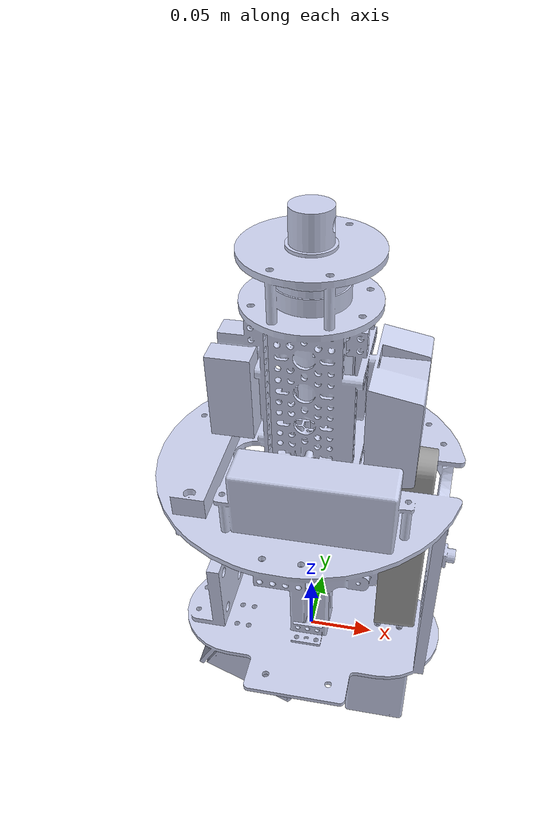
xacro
<?xml version="1.0"?>

<robot xmlns:xacro="http://www.ros.org/wiki/xacro" name="ilumo">
    <link name="base_link">
        <inertial>
            <origin xyz="0.0081135 -0.0088276 0.16905" rpy="0 0 0" />
            <mass value="1.075" />
            <inertia
                ixx="0.0014664" ixy="4.1828E-06" ixz="-1.0861E-05"
                iyy="0.0015072" iyz="-2.3652E-05"
                izz="0.0015929" />
        </inertial>
        <visual>
            <origin xyz="0 0 0" rpy="0 0 0" />
            <geometry>
                <mesh filename="package://ilumo_description/meshes/base_link.STL" />
            </geometry>
            <material name="">
                <color rgba="0.79216 0.81961 0.92941 1" />
            </material>
        </visual>
        <collision>
            <origin xyz="0 0 0" rpy="0 0 0" />
            <geometry>
                <mesh filename="package://ilumo_description/meshes/base_link.STL" />
            </geometry>
        </collision>
    </link>
    <link name="rot_link">
        <inertial>
            <origin xyz="-1.2768E-09 2.6825E-10 -0.023497" rpy="0 0 0" />
            <mass value="0.041606" />
            <inertia
                ixx="1.3344E-05" ixy="-2.4579E-12" ixz="1.2573E-12"
                iyy="1.327E-05" iyz="-3.6513E-13"
                izz="5.5627E-06" />
        </inertial>
        <visual>
            <origin xyz="0 0 0" rpy="0 0 0" />
            <geometry>
                <mesh filename="package://ilumo_description/meshes/rot_link.STL" />
            </geometry>
            <material name="">
                <color rgba="0.79216 0.81961 0.93333 1" />
            </material>
        </visual>
        <collision>
        <origin xyz="0 0 0" rpy="0 0 0" />
        <geometry>
            <mesh filename="package://ilumo_description/meshes/rot_link.STL" />
        </geometry>
        </collision>
    </link>
    <joint name="rot_joint" type="revolute">
        <origin xyz="0 0 0.344" rpy="0 0 0" />
        <parent link="base_link" />
        <child link="rot_link" />
        <axis xyz="0 0 1" />
        <limit lower="0" upper="0" effort="2.5987" velocity="31.416" />
    </joint>
    <link name="lidar_side_link">
        <inertial>
            <origin xyz="-0.010032 -0.0076905 -0.0051375" rpy="0 0 0" />
            <mass value="0.049225" />
            <inertia
                ixx="3.0504E-05" ixy="2.1873E-06" ixz="-1.0675E-06"
                iyy="5.9636E-05" iyz="-2.241E-06"
                izz="5.2563E-05" />
        </inertial>
        <visual>
            <origin xyz="0 0 0" rpy="0 0 0" />
            <geometry>
                <mesh filename="package://ilumo_description/meshes/lidar_side_link.STL" />
            </geometry>
            <material name="">
                <color rgba="0.79216 0.81961 0.93333 1" />
            </material>
        </visual>
        <collision>
            <origin xyz="0 0 0" rpy="0 0 0" />
            <geometry>
                <mesh filename="package://ilumo_description/meshes/lidar_side_link.STL" />
            </geometry>
        </collision>
    </link>
    <joint name="lidar_side_joint" type="fixed">
        <origin xyz="0.0655 -0.00067464 -0.0472" rpy="1.5708 1.5708 0" />
        <parent link="base_link" />
        <child link="lidar_side_link" />
        <axis xyz="0 0 0" />
    </joint>
    <link name="lidar_bottom_link">
        <inertial>
            <origin xyz="-0.010032 -0.0076905 -0.0045629" rpy="0 0 0" />
            <mass value="0.049225" />
            <inertia
                ixx="3.0504E-05" ixy="2.1873E-06" ixz="-1.0675E-06"
                iyy="5.9636E-05" iyz="-2.241E-06"
                izz="5.2563E-05" />
        </inertial>
        <visual>
            <origin xyz="0 0 0" rpy="0 0 0" />
            <geometry>
                <mesh filename="package://ilumo_description/meshes/lidar_bottom_link.STL" />
            </geometry>
            <material name="">
                <color rgba="0.79216 0.81961 0.93333 1" />
            </material>
        </visual>
        <collision>
            <origin xyz="0 0 0" rpy="0 0 0" />
            <geometry>
                <mesh filename="package://ilumo_description/meshes/lidar_bottom_link.STL" />
            </geometry>
        </collision>
    </link>
    <joint name="lidar_bottom_joint" type="fixed">
        <origin xyz="-0.042874 0.0017 -0.058344" rpy="-1.5708 0.5236 0" />
        <parent link="base_link" />
        <child link="lidar_bottom_link" />
        <axis xyz="0 0 0" />
    </joint>
    <link name="thermal_cam_link">
        <inertial>
        <origin xyz="0.0018626 -2.2776E-05 0.0016758" rpy="0 0 0" />
        <mass value="0.0026558" />
        <inertia
            ixx="5.4897E-07" ixy="-5.7385E-24" ixz="2.248E-09"
            iyy="5.4333E-07" iyz="1.9625E-21"
            izz="5.9387E-08" />
        </inertial>
        <visual>
            <origin xyz="0 0 0" rpy="0 0 0" />
            <geometry>
                <mesh filename="package://ilumo_description/meshes/thermal_cam_link.STL" />
            </geometry>
            <material name="">
                <color rgba="0.79216 0.81961 0.93333 1" />
            </material>
        </visual>
        <collision>
            <origin xyz="0 0 0" rpy="0 0 0" />
            <geometry>
                <mesh filename="package://ilumo_description/meshes/thermal_cam_link.STL" />
            </geometry>
        </collision>
    </link>
    <joint name="thermal_cam_joint" type="fixed">
        <origin xyz="0.096003 0 0.10277" rpy="0 0 0" />
        <parent link="base_link" />
        <child link="thermal_cam_link" />
        <axis xyz="0 0 0" />
    </joint>
    <link name="stereo_cam_link">
        <inertial>
            <origin xyz="0.0028842 -0.060003 -2.557E-05" rpy="0 0 0" />
            <mass value="0.15226" />
            <inertia
                ixx="0.00037233" ixy="2.3873E-09" ixz="-3.7022E-08"
                iyy="2.2818E-05" iyz="6.2314E-09"
                izz="0.00037474" />
        </inertial>
        <visual>
            <origin xyz="0 0 0" rpy="0 0 0" />
            <geometry>
                <mesh filename="package://ilumo_description/meshes/stereo_cam_link.STL" />
            </geometry>
            <material name="">
                <color rgba="0.62745 0.62745 0.62745 1" />
            </material>
        </visual>
        <collision>
            <origin xyz="0 0 0" rpy="0 0 0" />
            <geometry>
                <mesh filename="package://ilumo_description/meshes/stereo_cam_link.STL" />
            </geometry>
        </collision>
    </link>
    <joint name="stereo_cam_joint" type="fixed">
        <origin xyz="0.065683 -0.00067464 0.17" rpy="1.5708 0 0" />
        <parent link="base_link" />
        <child link="stereo_cam_link" />
        <axis xyz="0 0 0" />
    </joint>
</robot>
